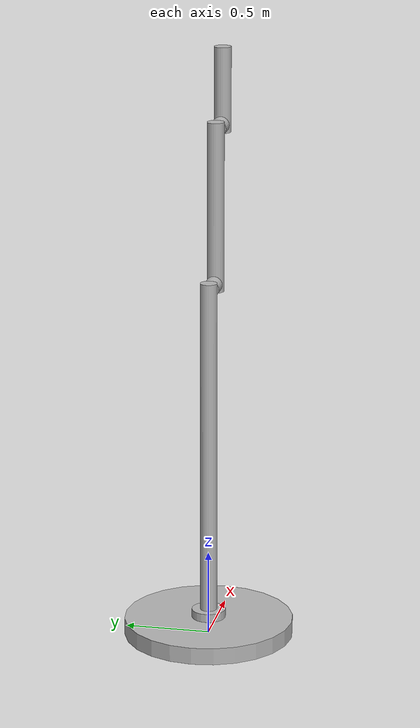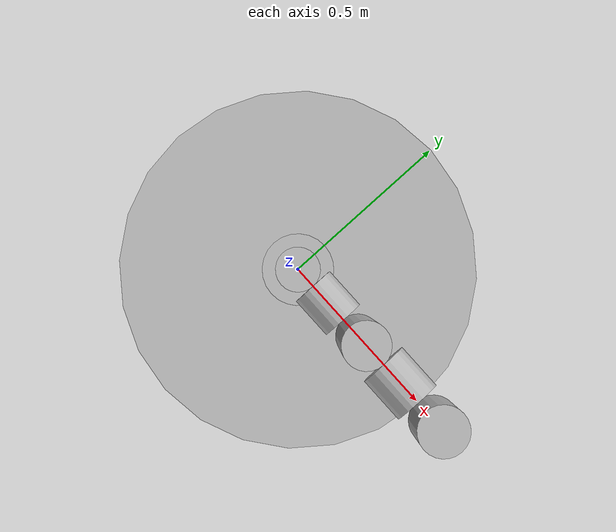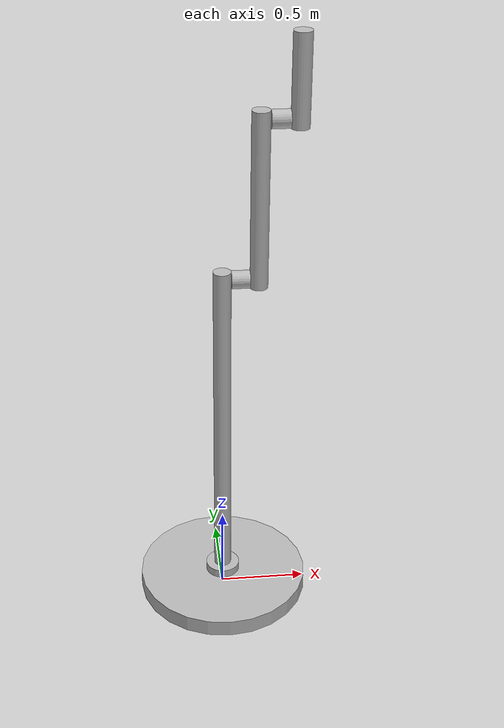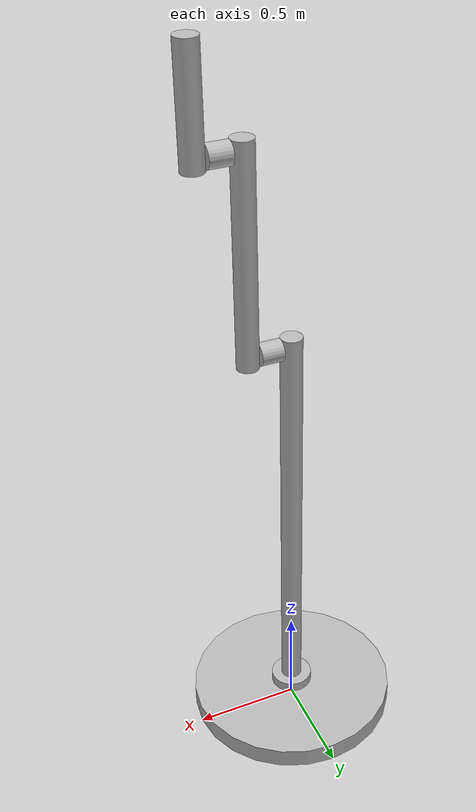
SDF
<!--With Hinges-->
<?xml version='1.0'?>
<sdf version='1.7'>
  <model name='my_robot'>
    <static>false</static>
    <link name='base'>
      <pose>0 0 0.05 0 -0 0</pose>
      <inertial>
        <mass>16000</mass>
        <inertia>
          <ixx>1053.33</ixx>
          <ixy>0</ixy>
          <ixz>0</ixz>
          <iyy>1053.33</iyy>
          <iyz>0</iyz>
          <izz>2000</izz>
        </inertia>
      </inertial>>
      <visual name='visual_base'>
        <geometry>
          <cylinder>
            <radius>0.5</radius>
            <length>0.1</length>
          </cylinder>
        </geometry>
      </visual>
      <collision name='collision_base'>
        <geometry>
          <cylinder>
            <radius>0.5</radius>
            <length>0.1</length>
          </cylinder>
        </geometry>
      </collision>
    </link>

    <link name='first_arm'>
      <pose>0 0 0.125 0 -0 0</pose>
      <visual name='visual_first'>
        <geometry>
          <cylinder>
            <radius>0.1</radius>
            <length>0.05</length>
          </cylinder>
        </geometry>
      </visual>
      <collision name='collision_first'>
        <geometry>
          <cylinder>
            <radius>0.1</radius>
            <length>0.05</length>
          </cylinder>
        </geometry>
      </collision>
      <inertial>
        <mass>5000</mass>
        <inertia>
          <ixx>17.7</ixx>
          <ixy>0</ixy>
          <ixz>0</ixz>
          <iyy>17.7</iyy>
          <iyz>0</iyz>
          <izz>25</izz>
        </inertia>
      </inertial>
    </link>

    <link name='second_arm'>
      <pose>0 0 1.15 0 0 0</pose>
      <visual name='visual_second'>
        <geometry>
          <cylinder>
            <radius>0.05</radius>
            <length>2</length>
          </cylinder>
        </geometry>
      </visual>
      <collision name='collision_second'>
        <geometry>
          <cylinder>
            <radius>0.05</radius>
            <length>2</length>
          </cylinder>
        </geometry>
      </collision>
      <inertial>
        <mass>20</mass>
        <inertia>
          <ixx>321.5</ixx>
          <ixy>0</ixy>
          <ixz>0</ixz>
          <iyy>321.5</iyy>
          <iyz>0</iyz>
          <izz>0.025</izz>
        </inertia>
      </inertial>
    </link>

    <link name='second_hinge'>
      <pose>0.1 0 2.1 0 -1.571 0</pose>
      <visual name='visual_second_hinge'>
        <geometry>
          <cylinder>
            <radius>0.05</radius>
            <length>0.1</length>
          </cylinder>
        </geometry>
      </visual>
      <collision name='collision_second_hinge'>
        <geometry>
          <cylinder>
            <radius>0.05</radius>
            <length>0.1</length>
          </cylinder>
        </geometry>
      </collision>
      <inertial>
        <mass>0.5</mass>
        <inertia>
          <ixx>0.177</ixx>
          <ixy>0</ixy>
          <ixz>0</ixz>
          <iyy>0.177</iyy>
          <iyz>0</iyz>
          <izz>0.25</izz>
        </inertia>
      </inertial>
    </link>

    <link name='third_arm'>
      <pose>0.2 0 2.55 0 0 0</pose>
      <visual name='visual_third'>
        <geometry>
          <cylinder>
            <radius>0.05</radius>
            <length>1</length>
          </cylinder>
        </geometry>
      </visual>
      <collision name='collision_third'>
        <geometry>
          <cylinder>
            <radius>0.05</radius>
            <length>1</length>
          </cylinder>
        </geometry>
      </collision>
      <inertial>
        <mass>10</mass>
        <inertia>
          <ixx>37.5</ixx>
          <ixy>0</ixy>
          <ixz>0</ixz>
          <iyy>37.5</iyy>
          <iyz>0</iyz>
          <izz>0.003125</izz>
        </inertia>
      </inertial>
    </link>

    <link name='third_hinge'>
      <pose>0.3 0 3 0 -1.571 0</pose>
      <visual name='visual_third_hinge'>
        <geometry>
          <cylinder>
            <radius>0.05</radius>
            <length>0.1</length>
          </cylinder>
        </geometry>
      </visual>
      <collision name='collision_third_hinge'>
        <geometry>
          <cylinder>
            <radius>0.05</radius>
            <length>0.1</length>
          </cylinder>
        </geometry>
      </collision>
      <inertial>
        <mass>0.5</mass>
        <inertia>
          <ixx>0.177</ixx>
          <ixy>0</ixy>
          <ixz>0</ixz>
          <iyy>0.177</iyy>
          <iyz>0</iyz>
          <izz>0.25</izz>
        </inertia>
      </inertial>
    </link>

    <link name='fourth_arm'>
      <pose>0.4 0 3.2 0 0 0</pose>
      <visual name='visual_fourth'>
        <geometry>
          <cylinder>
            <radius>0.05</radius>
            <length>0.5</length>
          </cylinder>
        </geometry>
      </visual>
      <collision name='collision_fourth'>
        <geometry>
          <cylinder>
            <radius>0.05</radius>
            <length>0.5</length>
          </cylinder>
        </geometry>
      </collision>
      <inertial>
        <mass>5</mass>
        <inertia>
          <ixx>4.75</ixx>
          <ixy>0</ixy>
          <ixz>0</ixz>
          <iyy>4.75</iyy>
          <iyz>0</iyz>
          <izz>0.0004</izz>
        </inertia>
      </inertial>
    </link>

    <joint name='joint1' type='revolute'>
      <parent>base</parent>
      <child>first_arm</child>
      <pose>0 0 -0.025 0 -0 0</pose>
      <axis>
        <xyz>0 0 1</xyz>
      </axis>
    </joint>

    <joint name='joint2' type='revolute'>
      <parent>first_arm</parent>
      <child>second_arm</child>
      <pose>0 0 -1 0 -0 0</pose>
      <axis>
        <xyz>1 0 0</xyz>
      </axis>
    </joint>

    <joint name='joint3' type='fixed'>
      <parent>second_arm</parent>
      <child>second_hinge</child>
      <pose>0 0 0.05 0 -0 0</pose>
    </joint>

    <joint name='joint4' type='revolute'>
      <parent>second_hinge</parent>
      <child>third_arm</child>
      <pose>-0.05 0 -0.45 0 -0 0</pose>
      <axis>
        <xyz>1 0 0</xyz>
      </axis>
    </joint>

    <joint name='joint5' type='fixed'>
      <parent>third_arm</parent>
      <child>third_hinge</child>
      <pose>0 0 0.05 0 -0 0</pose>
    </joint>

    <joint name='joint6' type='revolute'>
      <parent>third_hinge</parent>
      <child>fourth_arm</child>
      <pose>-0.05 0 -0.2 0 -0 0</pose>
      <axis>
        <xyz>1 0 0</xyz>
      </axis>
    </joint>
  </model>
</sdf>

<!--Straight One-->
